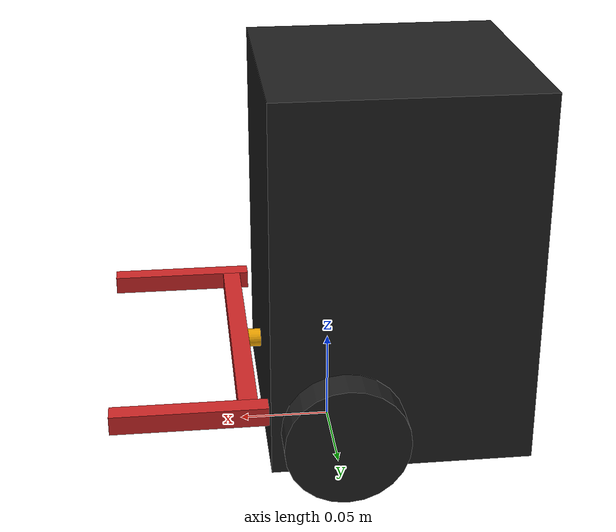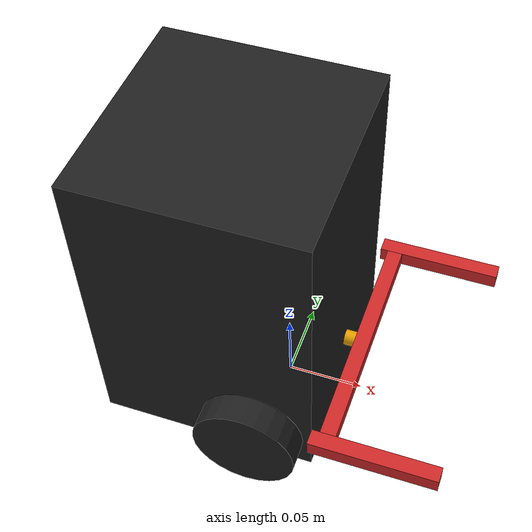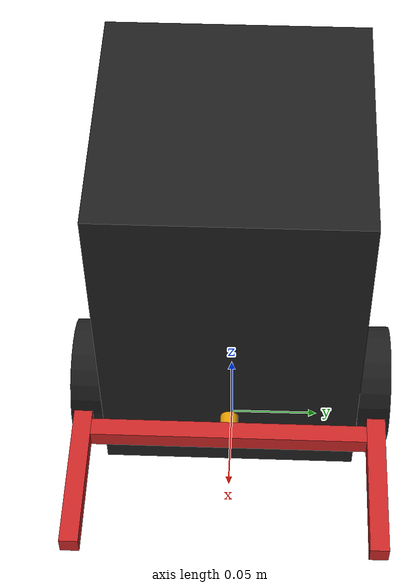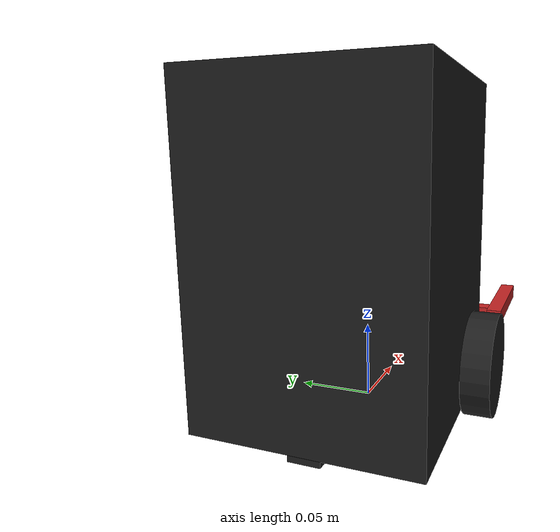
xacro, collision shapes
<?xml version="1.0" ?>
<robot name="turtlebot3_burger_gripper" xmlns:xacro="http://ros.org/wiki/xacro">
  <xacro:include filename="$(find turtlebot3_description)/urdf/common_properties.xacro"/>
  <xacro:include filename="$(find turtlebot3_description)/urdf/turtlebot3_burger_gripper2.gazebo.xacro"/>

  <!-- Robot Base -->
  <link name="base_footprint"/>

  <joint name="base_joint" type="fixed">
    <parent link="base_footprint"/>
    <child link="base_link"/>
    <origin xyz="0.0 0.0 0.010" rpy="0 0 0"/>
  </joint>

  <link name="base_link">
    <visual>
      <origin xyz="-0.032 0 0.0" rpy="0 0 0"/>
      <geometry>
        <mesh filename="package://turtlebot3_description/meshes/bases/burger_base.stl" scale="0.001 0.001 0.001"/>
      </geometry>
      <material name="light_black"/>
    </visual>

    <collision>
      <origin xyz="-0.032 0 0.100" rpy="0 0 0"/>
      <geometry>
        <box size="0.140 0.140 0.203"/>
      </geometry>
    </collision>

    <inertial>
      <origin xyz="0 0 0" rpy="0 0 0"/>
      <mass value="8.2573504e-01"/>
      <inertia ixx="2.2124416e-03" ixy="-1.2294101e-05" ixz="3.4938785e-05"
               iyy="2.1193702e-03" iyz="-5.0120904e-06"
               izz="2.0064271e-03" />
    </inertial>
  </link>

  <!-- Left Wheel -->
  <joint name="wheel_left_joint" type="continuous">
    <parent link="base_link"/>
    <child link="wheel_left_link"/>
    <origin xyz="0.0 0.08 0.023" rpy="-1.57 0 0"/>
    <axis xyz="0 0 1"/>
  </joint>

  <link name="wheel_left_link">
    <visual>
      <origin xyz="0 0 0" rpy="1.57 0 0"/>
      <geometry>
        <mesh filename="package://turtlebot3_description/meshes/wheels/left_tire.stl" scale="0.001 0.001 0.001"/>
      </geometry>
      <material name="dark"/>
    </visual>

    <collision>
      <origin xyz="0 0 0" rpy="0 0 0"/>
      <geometry>
        <cylinder length="0.018" radius="0.033"/>
      </geometry>
    </collision>

    <inertial>
      <origin xyz="0 0 0" />
      <mass value="2.8498940e-02" />
      <inertia ixx="1.1175580e-05" ixy="-4.2369783e-11" ixz="-5.9381719e-09"
               iyy="1.1192413e-05" iyz="-1.4400107e-11"
               izz="2.0712558e-05" />
      </inertial>
  </link>

  <!-- Right Wheel -->
  <joint name="wheel_right_joint" type="continuous">
    <parent link="base_link"/>
    <child link="wheel_right_link"/>
    <origin xyz="0.0 -0.080 0.023" rpy="-1.57 0 0"/>
    <axis xyz="0 0 1"/>
  </joint>

  <link name="wheel_right_link">
    <visual>
      <origin xyz="0 0 0" rpy="1.57 0 0"/>
      <geometry>
        <mesh filename="package://turtlebot3_description/meshes/wheels/right_tire.stl" scale="0.001 0.001 0.001"/>
      </geometry>
      <material name="dark"/>
    </visual>

    <collision>
      <origin xyz="0 0 0" rpy="0 0 0"/>
      <geometry>
        <cylinder length="0.018" radius="0.033"/>
      </geometry>
    </collision>

    <inertial>
      <origin xyz="0 0 0" />
      <mass value="2.8498940e-02" />
      <inertia ixx="1.1175580e-05" ixy="-4.2369783e-11" ixz="-5.9381719e-09"
               iyy="1.1192413e-05" iyz="-1.4400107e-11"
               izz="2.0712558e-05" />
      </inertial>
  </link>

  <!-- Caster Wheel -->
  <joint name="caster_back_joint" type="fixed">
    <parent link="base_link"/>
    <child link="caster_back_link"/>
    <origin xyz="-0.081 0 -0.004" rpy="-1.57 0 0"/>
  </joint>

  <link name="caster_back_link">
    <collision>
      <origin xyz="0 0.001 0" rpy="0 0 0"/>
      <geometry>
        <box size="0.030 0.009 0.020"/>
      </geometry>
    </collision>

    <inertial>
      <origin xyz="0 0 0" />
      <mass value="0.005" />
      <inertia ixx="0.001" ixy="0.0" ixz="0.0"
               iyy="0.001" iyz="0.0"
               izz="0.001" />
    </inertial>
  </link>

  <!-- IMU -->
  <joint name="imu_joint" type="fixed">
    <parent link="base_link"/>
    <child link="imu_link"/>
    <origin xyz="-0.032 0 0.068" rpy="0 0 0"/>
  </joint>

  <link name="imu_link"/>

  <!-- Top Scanner -->
  <joint name="top_scan_joint" type="fixed">
    <parent link="base_link"/>
    <child link="top_scan"/>
    <origin xyz="-0.032 0 0.172" rpy="0 0 0"/>
  </joint>

  <link name="top_scan">
    <visual>
      <origin xyz="0 0 0.0" rpy="0 0 0"/>
      <geometry>
        <mesh filename="package://turtlebot3_description/meshes/sensors/lds.stl" scale="0.001 0.001 0.001"/>
      </geometry>
      <material name="dark"/>
    </visual>

    <collision>
      <origin xyz="0 0 0" rpy="0 0 0"/>
      <geometry>
        <cylinder length="0.0315" radius="0.055"/>
      </geometry>
    </collision>

    <inertial>
      <mass value="0.114" />
      <origin xyz="0 0 0" />
      <inertia ixx="0.001" ixy="0.0" ixz="0.0"
               iyy="0.001" iyz="0.0"
               izz="0.001" />
    </inertial>
  </link>

  <!-- Bottom Scanner -->
  <joint name="bottom_scan_joint" type="fixed">
    <parent link="base_link"/>
    <child link="bottom_scan"/>
    <origin xyz="-0.032 0 0.075	" rpy="0 0 0"/>
  </joint>

  <link name="bottom_scan">
    <visual>
      <origin xyz="0 0 0.0" rpy="0 0 0"/>
      <geometry>
        <mesh filename="package://turtlebot3_description/meshes/sensors/lds.stl" scale="0.001 0.001 0.001"/>
      </geometry>
      <material name="dark"/>
    </visual>

    <collision>
      <origin xyz="0 0 0" rpy="0 0 0"/>
      <geometry>
        <cylinder length="0.0315" radius="0.055"/>
      </geometry>
    </collision>

    <inertial>
      <mass value="0.114" />
      <origin xyz="0 0 0" />
      <inertia ixx="0.001" ixy="0.0" ixz="0.0"
               iyy="0.001" iyz="0.0"
               izz="0.001" />
    </inertial>
  </link>

  <!-- Gripper -->
  <joint name="gripper_base_joint" type="fixed">
    <parent link="base_link"/>
    <child link="gripper_base"/>
    <origin xyz="0.04 0.0 0.042" rpy="0 1.57 0"/>
  </joint>

  <link name="gripper_base" type="fixed">
    <visual>
      <geometry>
        <cylinder length="0.02" radius="0.005"/>
      </geometry>
    </visual>
    <collision>
      <geometry>
        <cylinder length="0.02" radius="0.005"/>
      </geometry>
    </collision>
  </link>

  <joint name="gripper_beam_joint" type="fixed">
    <parent link="gripper_base"/>
    <child link="gripper_beam"/>
    <origin xyz="0.0 0.0 0.01" rpy="0 0 1.57"/>
  </joint>

  <link name="gripper_beam" type="fixed">
    <visual>
      <geometry>
        <box size="0.15 0.01 0.01"/>
      </geometry>
    </visual>
    <collision>
      <geometry>
        <box size="0.15 0.01 0.01"/>
      </geometry>
    </collision>
  </link>

  <joint name="gripper_left_joint" type="fixed">
    <parent link="gripper_beam"/>
    <child link="gripper_left"/>
    <origin xyz="0.08 0.0 0.03" rpy="0 0 0"/>
  </joint>

  <link name="gripper_left" type="fixed">
    <visual>
      <geometry>
        <box size="0.01 0.01 0.08"/>
      </geometry>
    </visual>
    <collision>
      <geometry>
        <box size="0.01 0.01 0.08"/>
      </geometry>
    </collision>
  </link>

  <joint name="gripper_right_joint" type="fixed">
    <parent link="gripper_beam"/>
    <child link="gripper_right"/>
    <origin xyz="-0.08 0.0 0.03" rpy="0 0 0"/>
  </joint>

  <link name="gripper_right" type="fixed">
    <visual>
      <geometry>
        <box size="0.01 0.01 0.08"/>
      </geometry>
    </visual>
    <collision>
      <geometry>
        <box size="0.01 0.01 0.08"/>
      </geometry>
    </collision>
  </link>

</robot>
